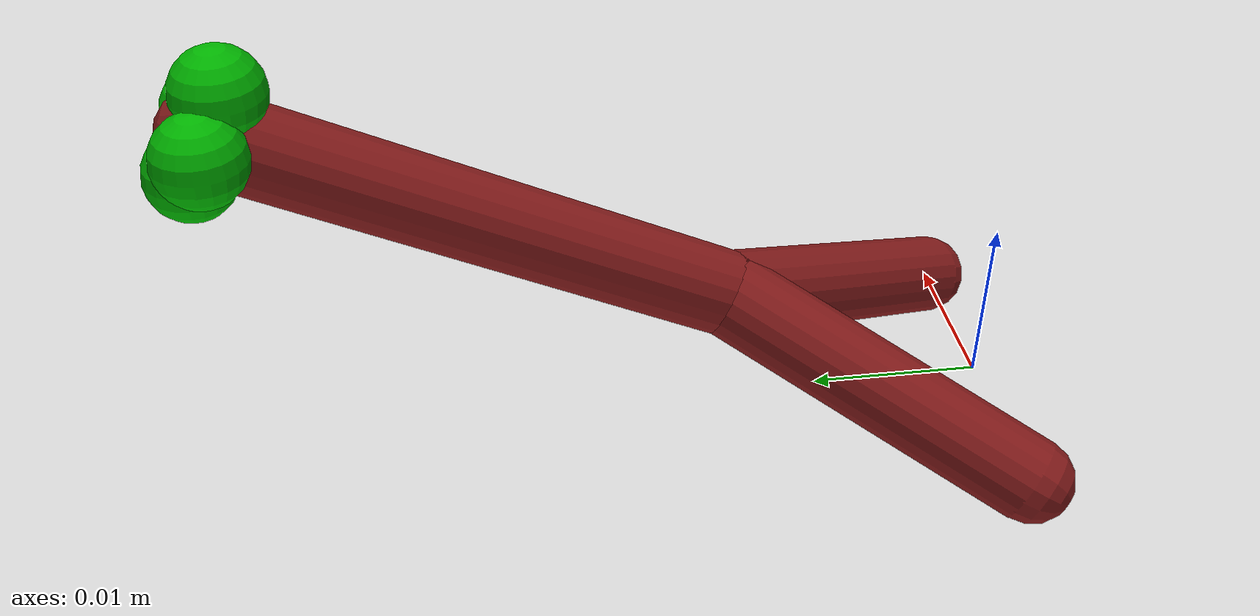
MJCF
<?xml version="1.0" ?>
<mujoco>
	<option timestep="0.005" iterations="50" integrator="RK4" tolerance="1e-10"/>
	<default>
		<joint type="ball"/>
		<muscle ctrllimited="true" ctrlrange="-1000 1000"/>
		<geom size="0.0025" mass="0.1" rgba=".5 .1 .1 1"/>
		<site size="0.0025" rgba="0 .7 0 1"/>
		<tendon rgba="0 1 0 1" stiffness="1000" damping="15"/>
	</default>
	<asset>
		<texture name="texplane" type="2d" builtin="checker" rgb1=".25 .25 .25" rgb2=".28 .28 .28" width="512" height="512" markrgb=".8 .8 .8"/>
		<material name="matplane" reflectance="0.1" texture="texplane" texrepeat="1 1" texuniform="true"/>
	</asset>
	<worldbody>
		<geom name="floor" rgba="1 1 1 1" pos="0 0 -0.35" size="0 0 1" type="plane" material="matplane"/>
		<light directional="true" diffuse=".8 .8 .8" specular=".2 .2 .2" pos="0 0 5" dir="0 0 -1"/>
		<geom type="capsule" fromto="0.009999999999999998 0.0 0.0 0.0 0.015697711344427916 0.007319963015413336"/>
		<geom type="capsule" fromto="-0.009999999999999998 0.0 0.0 0.0 0.015697711344427916 0.007319963015413336"/>
		<geom type="capsule" fromto="0.0 0.04288694495552741 0.01999851086763432 0.0 0.015697711344427916 0.007319963015413336"/>
		<site name="y0_0" pos="0.0 0.041830399301175665 0.022264280335225945"/>
		<site name="y0_1" pos="0.0 0.043943490609879156 0.017732741400042693"/>
		<site name="y0_2" pos="0.0025 0.04288694495552741 0.01999851086763432"/>
		<site name="y0_3" pos="-0.0025 0.04288694495552741 0.01999851086763432"/>
	</worldbody>
</mujoco>
